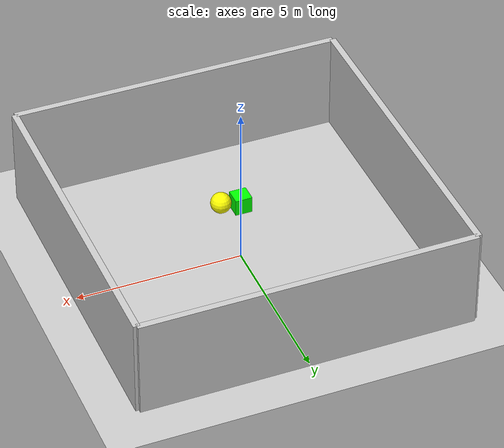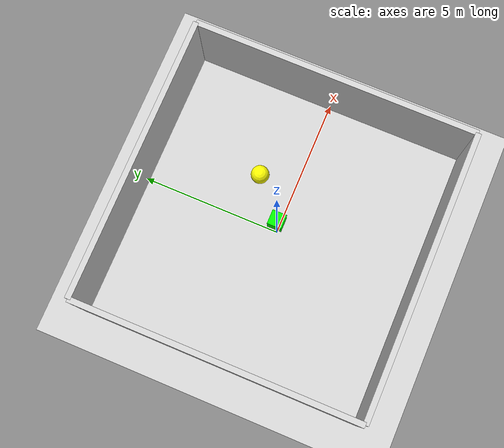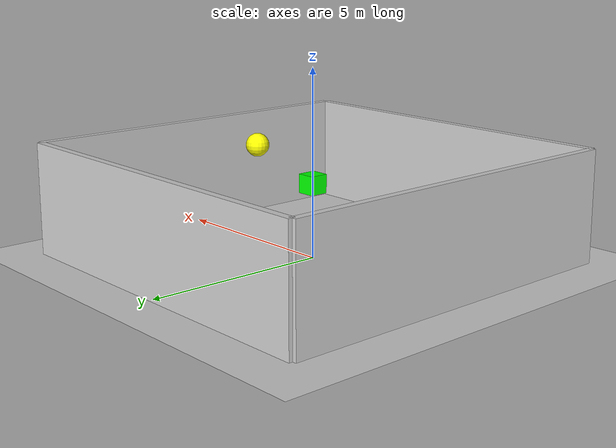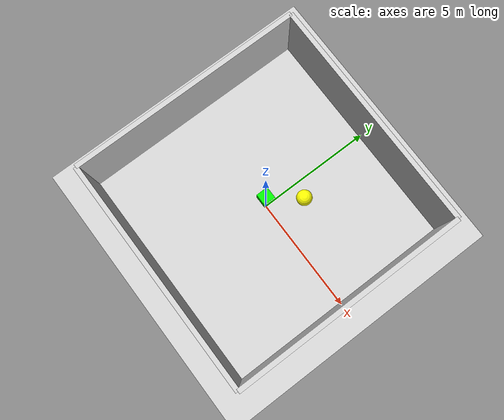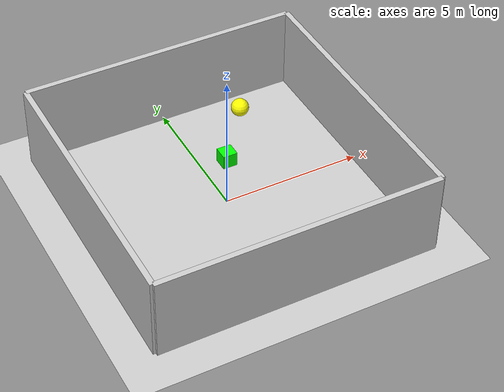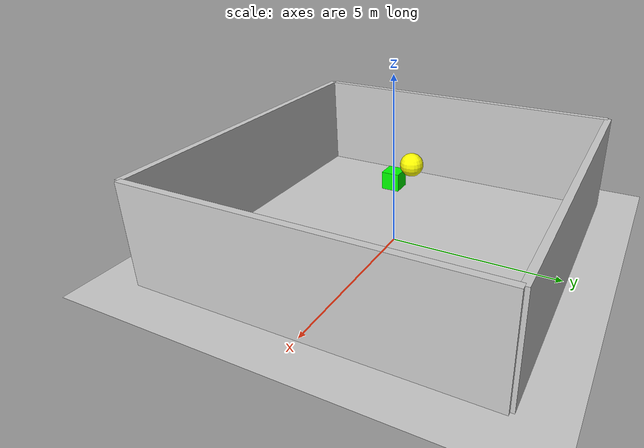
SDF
<?xml version="1.0"?>
<sdf version="1.7">
  <world name="environment_setup">
    <physics type="ode">
      <max_step_size>0.001</max_step_size>
      <real_time_factor>1</real_time_factor>
      <real_time_update_rate>1000</real_time_update_rate>
      <gravity>0 0 -9.8</gravity>
    </physics>

    <!-- Ground plane -->
    <include>
      <uri>model://ground_plane</uri>
    </include>

    <!-- Sun light -->
    <include>
      <uri>model://sun</uri>
    </include>

    <!-- Walls -->
    <model name="wall1">
      <pose>5 0 1.5 0 0 0</pose>
      <link name="wall_link">
        <collision name="wall_collision">
          <geometry>
            <box>
              <size>0.2 10 3</size>
            </box>
          </geometry>
        </collision>
        <visual name="wall_visual">
          <geometry>
            <box>
              <size>0.2 10 3</size>
            </box>
          </geometry>
          <material>
            <ambient>0.8 0.8 0.8 1</ambient>
            <diffuse>0.8 0.8 0.8 1</diffuse>
          </material>
        </visual>
        <inertial>
          <mass>100.0</mass>
          <inertia>
            <ixx>100.0</ixx>
            <ixy>0</ixy>
            <ixz>0</ixz>
            <iyy>100.0</iyy>
            <iyz>0</iyz>
            <izz>100.0</izz>
          </inertia>
        </inertial>
      </link>
    </model>

    <model name="wall2">
      <pose>-5 0 1.5 0 0 0</pose>
      <link name="wall_link">
        <collision name="wall_collision">
          <geometry>
            <box>
              <size>0.2 10 3</size>
            </box>
          </geometry>
        </collision>
        <visual name="wall_visual">
          <geometry>
            <box>
              <size>0.2 10 3</size>
            </box>
          </geometry>
          <material>
            <ambient>0.8 0.8 0.8 1</ambient>
            <diffuse>0.8 0.8 0.8 1</diffuse>
          </material>
        </visual>
        <inertial>
          <mass>100.0</mass>
          <inertia>
            <ixx>100.0</ixx>
            <ixy>0</ixy>
            <ixz>0</ixz>
            <iyy>100.0</iyy>
            <iyz>0</iyz>
            <izz>100.0</izz>
          </inertia>
        </inertial>
      </link>
    </model>

    <model name="wall3">
      <pose>0 5 1.5 0 0 1.5707</pose>
      <link name="wall_link">
        <collision name="wall_collision">
          <geometry>
            <box>
              <size>0.2 10 3</size>
            </box>
          </geometry>
        </collision>
        <visual name="wall_visual">
          <geometry>
            <box>
              <size>0.2 10 3</size>
            </box>
          </geometry>
          <material>
            <ambient>0.8 0.8 0.8 1</ambient>
            <diffuse>0.8 0.8 0.8 1</diffuse>
          </material>
        </visual>
        <inertial>
          <mass>100.0</mass>
          <inertia>
            <ixx>100.0</ixx>
            <ixy>0</ixy>
            <ixz>0</ixz>
            <iyy>100.0</iyy>
            <iyz>0</iyz>
            <izz>100.0</izz>
          </inertia>
        </inertial>
      </link>
    </model>

    <model name="wall4">
      <pose>0 -5 1.5 0 0 1.5707</pose>
      <link name="wall_link">
        <collision name="wall_collision">
          <geometry>
            <box>
              <size>0.2 10 3</size>
            </box>
          </geometry>
        </collision>
        <visual name="wall_visual">
          <geometry>
            <box>
              <size>0.2 10 3</size>
            </box>
          </geometry>
          <material>
            <ambient>0.8 0.8 0.8 1</ambient>
            <diffuse>0.8 0.8 0.8 1</diffuse>
          </material>
        </visual>
        <inertial>
          <mass>100.0</mass>
          <inertia>
            <ixx>100.0</ixx>
            <ixy>0</ixy>
            <ixz>0</ixz>
            <iyy>100.0</iyy>
            <iyz>0</iyz>
            <izz>100.0</izz>
          </inertia>
        </inertial>
      </link>
    </model>

    <!-- Objects to test physics -->
    <model name="test_box">
      <pose>0 0 2 0 0 0</pose>
      <link name="box_link">
        <collision name="box_collision">
          <geometry>
            <box>
              <size>0.5 0.5 0.5</size>
            </box>
          </geometry>
        </collision>
        <visual name="box_visual">
          <geometry>
            <box>
              <size>0.5 0.5 0.5</size>
            </box>
          </geometry>
          <material>
            <ambient>0 1 0 1</ambient>
            <diffuse>0 1 0 1</diffuse>
          </material>
        </visual>
        <inertial>
          <mass>1.0</mass>
          <inertia>
            <ixx>0.041667</ixx>
            <ixy>0</ixy>
            <ixz>0</ixz>
            <iyy>0.041667</iyy>
            <iyz>0</iyz>
            <izz>0.041667</izz>
          </inertia>
        </inertial>
      </link>
    </model>

    <model name="test_sphere">
      <pose>1 1 3 0 0 0</pose>
      <link name="sphere_link">
        <collision name="sphere_collision">
          <geometry>
            <sphere>
              <radius>0.3</radius>
            </sphere>
          </geometry>
        </collision>
        <visual name="sphere_visual">
          <geometry>
            <sphere>
              <radius>0.3</radius>
            </sphere>
          </geometry>
          <material>
            <ambient>1 1 0 1</ambient>
            <diffuse>1 1 0 1</diffuse>
          </material>
        </visual>
        <inertial>
          <mass>1.5</mass>
          <inertia>
            <ixx>0.027</ixx>
            <ixy>0</ixy>
            <ixz>0</ixz>
            <iyy>0.027</iyy>
            <iyz>0</iyz>
            <izz>0.027</izz>
          </inertia>
        </inertial>
      </link>
    </model>
  </world>
</sdf>
